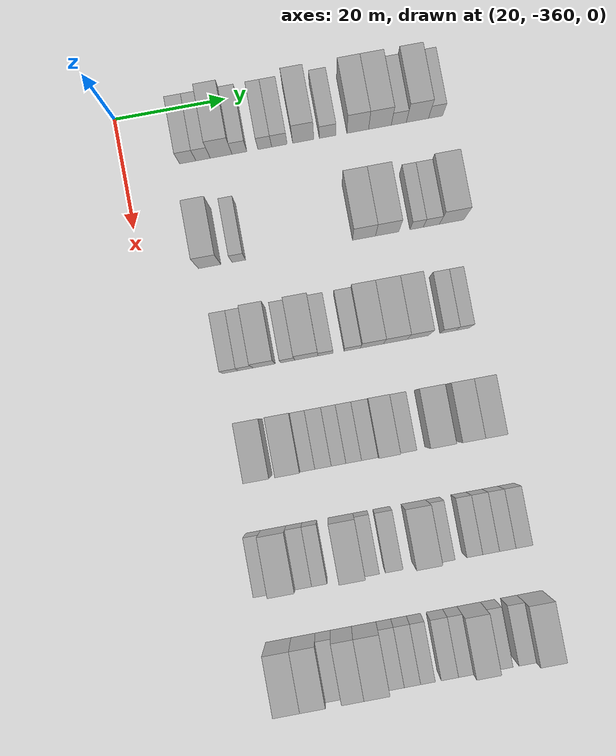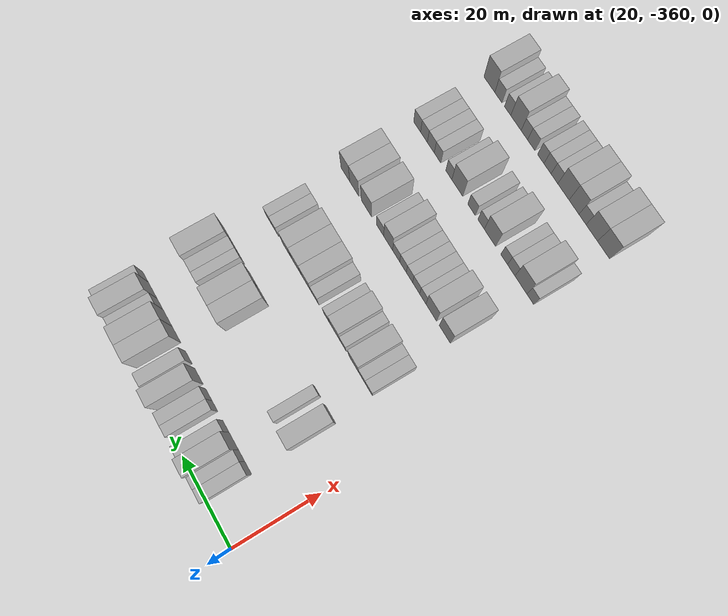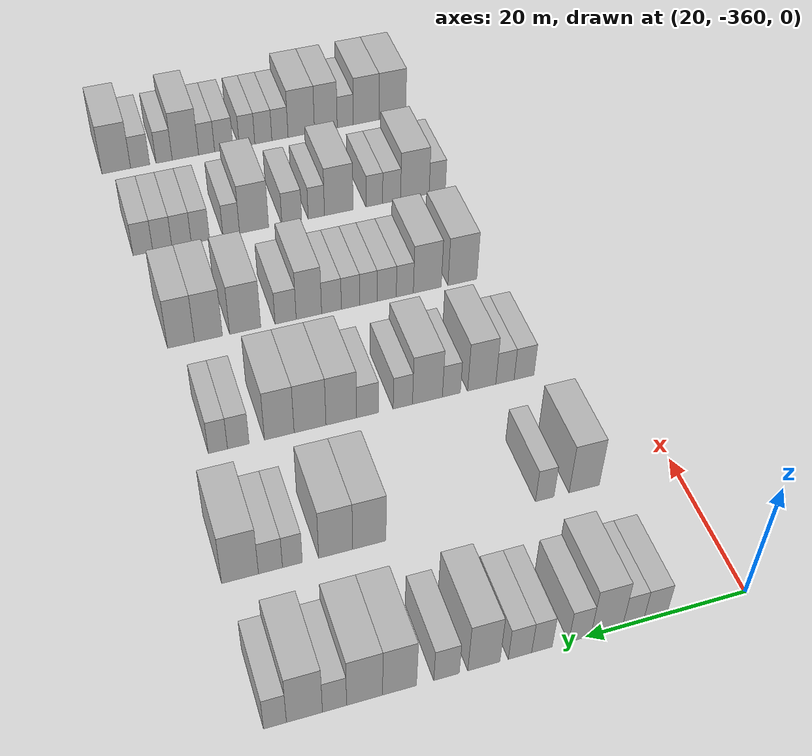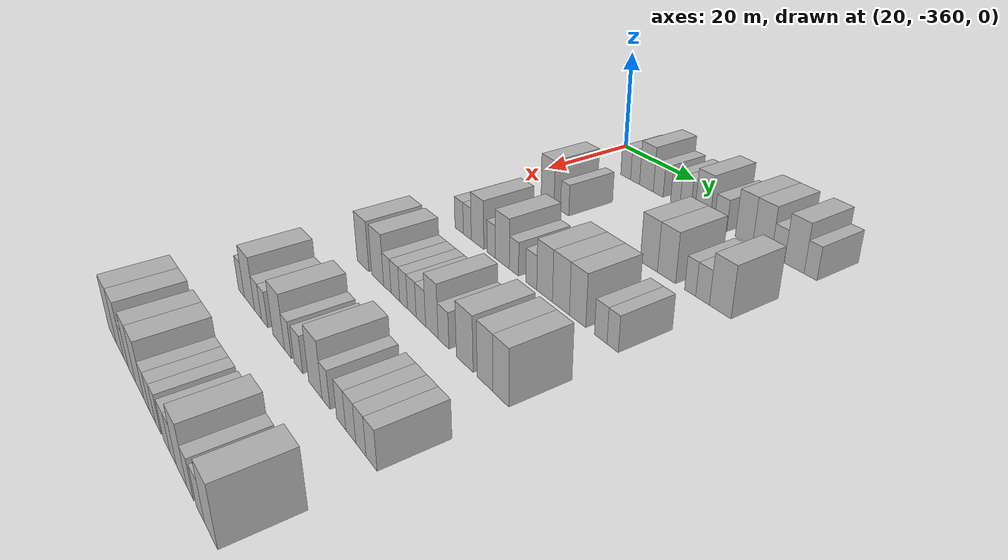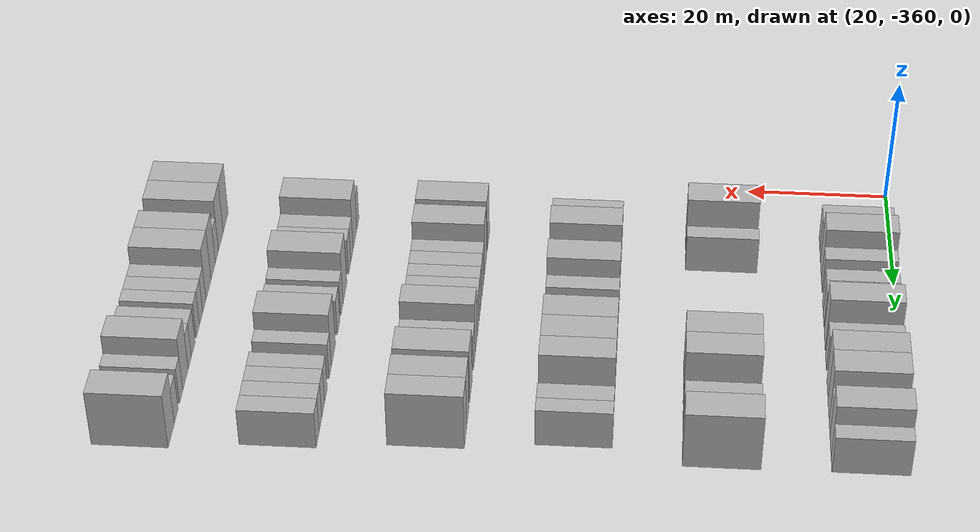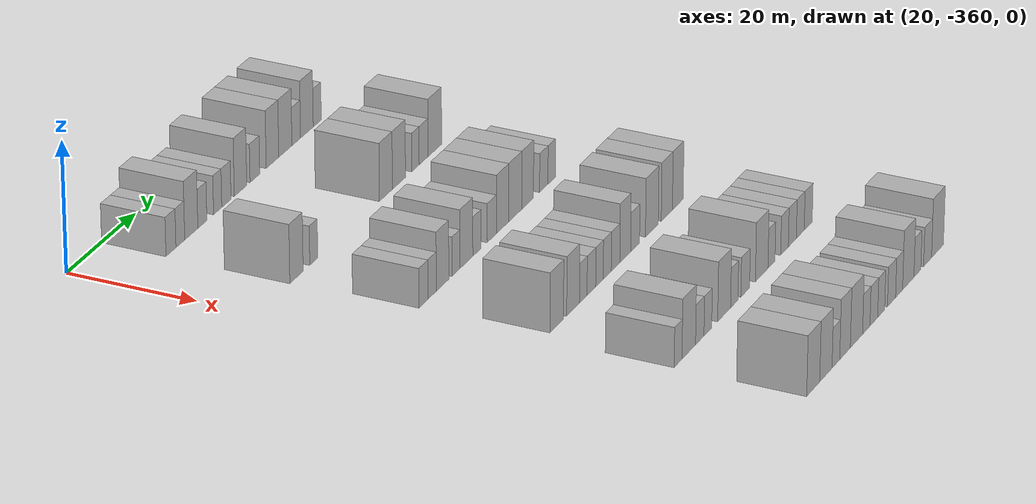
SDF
<sdf version="1.6">
 <world name="default">
  <model name="building_1">
   <static>1</static>
   <pose>25.0000 -348.5407 0 0.000000 0.000000 0.000000</pose>
   <link name="link">
    <pose>0 0 3.00 0 0 0</pose>
    <collision name="collision"><geometry><box><size>10.0000 2.9186 6.0000</size></box></geometry></collision>
    <visual name="visual">
     <cast_shadows>0</cast_shadows>
     <geometry><box><size>10.0000 2.9186 6.0000</size></box></geometry>
     <material>
      <script>
       <uri>model://HANNAS_wall/materials/scripts</uri>
       <uri>model://HANNAS_wall/materials/textures</uri>
       <name>vrc/HANNAS_wall</name>
      </script>
     </material>
    </visual>
   </link>
  </model>
  <model name="building_2">
   <static>1</static>
   <pose>25.0000 -345.7877 0 0.000000 0.000000 0.000000</pose>
   <link name="link">
    <pose>0 0 3.00 0 0 0</pose>
    <collision name="collision"><geometry><box><size>10.0000 2.5873 6.0000</size></box></geometry></collision>
    <visual name="visual">
     <cast_shadows>0</cast_shadows>
     <geometry><box><size>10.0000 2.5873 6.0000</size></box></geometry>
     <material>
      <script>
       <uri>model://HANNAS_wall/materials/scripts</uri>
       <uri>model://HANNAS_wall/materials/textures</uri>
       <name>vrc/HANNAS_wall</name>
      </script>
     </material>
    </visual>
   </link>
  </model>
  <model name="building_3">
   <static>1</static>
   <pose>25.0000 -342.5471 0 0.000000 0.000000 0.000000</pose>
   <link name="link">
    <pose>0 0 4.50 0 0 0</pose>
    <collision name="collision"><geometry><box><size>10.0000 3.8939 9.0000</size></box></geometry></collision>
    <visual name="visual">
     <cast_shadows>0</cast_shadows>
     <geometry><box><size>10.0000 3.8939 9.0000</size></box></geometry>
     <material>
      <script>
       <uri>model://HANNAS_wall/materials/scripts</uri>
       <uri>model://HANNAS_wall/materials/textures</uri>
       <name>vrc/HANNAS_wall</name>
      </script>
     </material>
    </visual>
   </link>
  </model>
  <model name="building_4">
   <static>1</static>
   <pose>25.0000 -339.2583 0 0.000000 0.000000 0.000000</pose>
   <link name="link">
    <pose>0 0 3.00 0 0 0</pose>
    <collision name="collision"><geometry><box><size>10.0000 2.6837 6.0000</size></box></geometry></collision>
    <visual name="visual">
     <cast_shadows>0</cast_shadows>
     <geometry><box><size>10.0000 2.6837 6.0000</size></box></geometry>
     <material>
      <script>
       <uri>model://HANNAS_wall/materials/scripts</uri>
       <uri>model://HANNAS_wall/materials/textures</uri>
       <name>vrc/HANNAS_wall</name>
      </script>
     </material>
    </visual>
   </link>
  </model>
  <model name="building_5">
   <static>1</static>
   <pose>25.0000 -334.6837 0 0.000000 0.000000 0.000000</pose>
   <link name="link">
    <pose>0 0 3.00 0 0 0</pose>
    <collision name="collision"><geometry><box><size>10.0000 2.4655 6.0000</size></box></geometry></collision>
    <visual name="visual">
     <cast_shadows>0</cast_shadows>
     <geometry><box><size>10.0000 2.4655 6.0000</size></box></geometry>
     <material>
      <script>
       <uri>model://HANNAS_wall/materials/scripts</uri>
       <uri>model://HANNAS_wall/materials/textures</uri>
       <name>vrc/HANNAS_wall</name>
      </script>
     </material>
    </visual>
   </link>
  </model>
  <model name="building_6">
   <static>1</static>
   <pose>25.0000 -332.0545 0 0.000000 0.000000 0.000000</pose>
   <link name="link">
    <pose>0 0 3.00 0 0 0</pose>
    <collision name="collision"><geometry><box><size>10.0000 2.7928 6.0000</size></box></geometry></collision>
    <visual name="visual">
     <cast_shadows>0</cast_shadows>
     <geometry><box><size>10.0000 2.7928 6.0000</size></box></geometry>
     <material>
      <script>
       <uri>model://HANNAS_wall/materials/scripts</uri>
       <uri>model://HANNAS_wall/materials/textures</uri>
       <name>vrc/HANNAS_wall</name>
      </script>
     </material>
    </visual>
   </link>
  </model>
  <model name="building_7">
   <static>1</static>
   <pose>25.0000 -327.7626 0 0.000000 0.000000 0.000000</pose>
   <link name="link">
    <pose>0 0 4.50 0 0 0</pose>
    <collision name="collision"><geometry><box><size>10.0000 3.7911 9.0000</size></box></geometry></collision>
    <visual name="visual">
     <cast_shadows>0</cast_shadows>
     <geometry><box><size>10.0000 3.7911 9.0000</size></box></geometry>
     <material>
      <script>
       <uri>model://HANNAS_wall/materials/scripts</uri>
       <uri>model://HANNAS_wall/materials/textures</uri>
       <name>vrc/HANNAS_wall</name>
      </script>
     </material>
    </visual>
   </link>
  </model>
  <model name="building_8">
   <static>1</static>
   <pose>25.0000 -323.3804 0 0.000000 0.000000 0.000000</pose>
   <link name="link">
    <pose>0 0 3.00 0 0 0</pose>
    <collision name="collision"><geometry><box><size>10.0000 2.9733 6.0000</size></box></geometry></collision>
    <visual name="visual">
     <cast_shadows>0</cast_shadows>
     <geometry><box><size>10.0000 2.9733 6.0000</size></box></geometry>
     <material>
      <script>
       <uri>model://HANNAS_wall/materials/scripts</uri>
       <uri>model://HANNAS_wall/materials/textures</uri>
       <name>vrc/HANNAS_wall</name>
      </script>
     </material>
    </visual>
   </link>
  </model>
  <model name="building_9">
   <static>1</static>
   <pose>25.0000 -317.9427 0 0.000000 0.000000 0.000000</pose>
   <link name="link">
    <pose>0 0 4.50 0 0 0</pose>
    <collision name="collision"><geometry><box><size>10.0000 3.9019 9.0000</size></box></geometry></collision>
    <visual name="visual">
     <cast_shadows>0</cast_shadows>
     <geometry><box><size>10.0000 3.9019 9.0000</size></box></geometry>
     <material>
      <script>
       <uri>model://HANNAS_wall/materials/scripts</uri>
       <uri>model://HANNAS_wall/materials/textures</uri>
       <name>vrc/HANNAS_wall</name>
      </script>
     </material>
    </visual>
   </link>
  </model>
  <model name="building_10">
   <static>1</static>
   <pose>25.0000 -313.9475 0 0.000000 0.000000 0.000000</pose>
   <link name="link">
    <pose>0 0 4.50 0 0 0</pose>
    <collision name="collision"><geometry><box><size>10.0000 4.0885 9.0000</size></box></geometry></collision>
    <visual name="visual">
     <cast_shadows>0</cast_shadows>
     <geometry><box><size>10.0000 4.0885 9.0000</size></box></geometry>
     <material>
      <script>
       <uri>model://HANNAS_wall/materials/scripts</uri>
       <uri>model://HANNAS_wall/materials/textures</uri>
       <name>vrc/HANNAS_wall</name>
      </script>
     </material>
    </visual>
   </link>
  </model>
  <model name="building_11">
   <static>1</static>
   <pose>25.0000 -310.5453 0 0.000000 0.000000 0.000000</pose>
   <link name="link">
    <pose>0 0 3.00 0 0 0</pose>
    <collision name="collision"><geometry><box><size>10.0000 2.7159 6.0000</size></box></geometry></collision>
    <visual name="visual">
     <cast_shadows>0</cast_shadows>
     <geometry><box><size>10.0000 2.7159 6.0000</size></box></geometry>
     <material>
      <script>
       <uri>model://HANNAS_wall/materials/scripts</uri>
       <uri>model://HANNAS_wall/materials/textures</uri>
       <name>vrc/HANNAS_wall</name>
      </script>
     </material>
    </visual>
   </link>
  </model>
  <model name="building_12">
   <static>1</static>
   <pose>25.0000 -307.1772 0 0.000000 0.000000 0.000000</pose>
   <link name="link">
    <pose>0 0 4.50 0 0 0</pose>
    <collision name="collision"><geometry><box><size>10.0000 4.0203 9.0000</size></box></geometry></collision>
    <visual name="visual">
     <cast_shadows>0</cast_shadows>
     <geometry><box><size>10.0000 4.0203 9.0000</size></box></geometry>
     <material>
      <script>
       <uri>model://HANNAS_wall/materials/scripts</uri>
       <uri>model://HANNAS_wall/materials/textures</uri>
       <name>vrc/HANNAS_wall</name>
      </script>
     </material>
    </visual>
   </link>
  </model>
  <model name="building_13">
   <static>1</static>
   <pose>25.0000 -303.8937 0 0.000000 0.000000 0.000000</pose>
   <link name="link">
    <pose>0 0 3.00 0 0 0</pose>
    <collision name="collision"><geometry><box><size>10.0000 2.5469 6.0000</size></box></geometry></collision>
    <visual name="visual">
     <cast_shadows>0</cast_shadows>
     <geometry><box><size>10.0000 2.5469 6.0000</size></box></geometry>
     <material>
      <script>
       <uri>model://HANNAS_wall/materials/scripts</uri>
       <uri>model://HANNAS_wall/materials/textures</uri>
       <name>vrc/HANNAS_wall</name>
      </script>
     </material>
    </visual>
   </link>
  </model>
  <model name="building_177">
   <static>1</static>
   <pose>44.0000 -347.9943 0 0.000000 0.000000 0.000000</pose>
   <link name="link">
    <pose>0 0 4.50 0 0 0</pose>
    <collision name="collision"><geometry><box><size>10.0000 4.0114 9.0000</size></box></geometry></collision>
    <visual name="visual">
     <cast_shadows>0</cast_shadows>
     <geometry><box><size>10.0000 4.0114 9.0000</size></box></geometry>
     <material>
      <script>
       <uri>model://HANNAS_wall/materials/scripts</uri>
       <uri>model://HANNAS_wall/materials/textures</uri>
       <name>vrc/HANNAS_wall</name>
      </script>
     </material>
    </visual>
   </link>
  </model>
  <model name="building_178">
   <static>1</static>
   <pose>44.0000 -342.7737 0 0.000000 0.000000 0.000000</pose>
   <link name="link">
    <pose>0 0 3.00 0 0 0</pose>
    <collision name="collision"><geometry><box><size>10.0000 2.4297 6.0000</size></box></geometry></collision>
    <visual name="visual">
     <cast_shadows>0</cast_shadows>
     <geometry><box><size>10.0000 2.4297 6.0000</size></box></geometry>
     <material>
      <script>
       <uri>model://HANNAS_wall/materials/scripts</uri>
       <uri>model://HANNAS_wall/materials/textures</uri>
       <name>vrc/HANNAS_wall</name>
      </script>
     </material>
    </visual>
   </link>
  </model>
  <model name="building_179">
   <static>1</static>
   <pose>44.0000 -320.3758 0 0.000000 0.000000 0.000000</pose>
   <link name="link">
    <pose>0 0 4.50 0 0 0</pose>
    <collision name="collision"><geometry><box><size>10.0000 4.1220 9.0000</size></box></geometry></collision>
    <visual name="visual">
     <cast_shadows>0</cast_shadows>
     <geometry><box><size>10.0000 4.1220 9.0000</size></box></geometry>
     <material>
      <script>
       <uri>model://HANNAS_wall/materials/scripts</uri>
       <uri>model://HANNAS_wall/materials/textures</uri>
       <name>vrc/HANNAS_wall</name>
      </script>
     </material>
    </visual>
   </link>
  </model>
  <model name="building_180">
   <static>1</static>
   <pose>44.0000 -316.2296 0 0.000000 0.000000 0.000000</pose>
   <link name="link">
    <pose>0 0 4.50 0 0 0</pose>
    <collision name="collision"><geometry><box><size>10.0000 4.1704 9.0000</size></box></geometry></collision>
    <visual name="visual">
     <cast_shadows>0</cast_shadows>
     <geometry><box><size>10.0000 4.1704 9.0000</size></box></geometry>
     <material>
      <script>
       <uri>model://HANNAS_wall/materials/scripts</uri>
       <uri>model://HANNAS_wall/materials/textures</uri>
       <name>vrc/HANNAS_wall</name>
      </script>
     </material>
    </visual>
   </link>
  </model>
  <model name="building_181">
   <static>1</static>
   <pose>44.0000 -310.9417 0 0.000000 0.000000 0.000000</pose>
   <link name="link">
    <pose>0 0 3.00 0 0 0</pose>
    <collision name="collision"><geometry><box><size>10.0000 2.4054 6.0000</size></box></geometry></collision>
    <visual name="visual">
     <cast_shadows>0</cast_shadows>
     <geometry><box><size>10.0000 2.4054 6.0000</size></box></geometry>
     <material>
      <script>
       <uri>model://HANNAS_wall/materials/scripts</uri>
       <uri>model://HANNAS_wall/materials/textures</uri>
       <name>vrc/HANNAS_wall</name>
      </script>
     </material>
    </visual>
   </link>
  </model>
  <model name="building_182">
   <static>1</static>
   <pose>44.0000 -308.2919 0 0.000000 0.000000 0.000000</pose>
   <link name="link">
    <pose>0 0 3.00 0 0 0</pose>
    <collision name="collision"><geometry><box><size>10.0000 2.8944 6.0000</size></box></geometry></collision>
    <visual name="visual">
     <cast_shadows>0</cast_shadows>
     <geometry><box><size>10.0000 2.8944 6.0000</size></box></geometry>
     <material>
      <script>
       <uri>model://HANNAS_wall/materials/scripts</uri>
       <uri>model://HANNAS_wall/materials/textures</uri>
       <name>vrc/HANNAS_wall</name>
      </script>
     </material>
    </visual>
   </link>
  </model>
  <model name="building_183">
   <static>1</static>
   <pose>44.0000 -304.6418 0 0.000000 0.000000 0.000000</pose>
   <link name="link">
    <pose>0 0 4.50 0 0 0</pose>
    <collision name="collision"><geometry><box><size>10.0000 4.4057 9.0000</size></box></geometry></collision>
    <visual name="visual">
     <cast_shadows>0</cast_shadows>
     <geometry><box><size>10.0000 4.4057 9.0000</size></box></geometry>
     <material>
      <script>
       <uri>model://HANNAS_wall/materials/scripts</uri>
       <uri>model://HANNAS_wall/materials/textures</uri>
       <name>vrc/HANNAS_wall</name>
      </script>
     </material>
    </visual>
   </link>
  </model>
  <model name="building_357">
   <static>1</static>
   <pose>63.0000 -347.6005 0 0.000000 0.000000 0.000000</pose>
   <link name="link">
    <pose>0 0 3.00 0 0 0</pose>
    <collision name="collision"><geometry><box><size>10.0000 2.7990 6.0000</size></box></geometry></collision>
    <visual name="visual">
     <cast_shadows>0</cast_shadows>
     <geometry><box><size>10.0000 2.7990 6.0000</size></box></geometry>
     <material>
      <script>
       <uri>model://HANNAS_wall/materials/scripts</uri>
       <uri>model://HANNAS_wall/materials/textures</uri>
       <name>vrc/HANNAS_wall</name>
      </script>
     </material>
    </visual>
   </link>
  </model>
  <model name="building_358">
   <static>1</static>
   <pose>63.0000 -344.9167 0 0.000000 0.000000 0.000000</pose>
   <link name="link">
    <pose>0 0 3.00 0 0 0</pose>
    <collision name="collision"><geometry><box><size>10.0000 2.5685 6.0000</size></box></geometry></collision>
    <visual name="visual">
     <cast_shadows>0</cast_shadows>
     <geometry><box><size>10.0000 2.5685 6.0000</size></box></geometry>
     <material>
      <script>
       <uri>model://HANNAS_wall/materials/scripts</uri>
       <uri>model://HANNAS_wall/materials/textures</uri>
       <name>vrc/HANNAS_wall</name>
      </script>
     </material>
    </visual>
   </link>
  </model>
  <model name="building_359">
   <static>1</static>
   <pose>63.0000 -341.6679 0 0.000000 0.000000 0.000000</pose>
   <link name="link">
    <pose>0 0 4.50 0 0 0</pose>
    <collision name="collision"><geometry><box><size>10.0000 3.9293 9.0000</size></box></geometry></collision>
    <visual name="visual">
     <cast_shadows>0</cast_shadows>
     <geometry><box><size>10.0000 3.9293 9.0000</size></box></geometry>
     <material>
      <script>
       <uri>model://HANNAS_wall/materials/scripts</uri>
       <uri>model://HANNAS_wall/materials/textures</uri>
       <name>vrc/HANNAS_wall</name>
      </script>
     </material>
    </visual>
   </link>
  </model>
  <model name="building_360">
   <static>1</static>
   <pose>63.0000 -337.4609 0 0.000000 0.000000 0.000000</pose>
   <link name="link">
    <pose>0 0 3.00 0 0 0</pose>
    <collision name="collision"><geometry><box><size>10.0000 2.4846 6.0000</size></box></geometry></collision>
    <visual name="visual">
     <cast_shadows>0</cast_shadows>
     <geometry><box><size>10.0000 2.4846 6.0000</size></box></geometry>
     <material>
      <script>
       <uri>model://HANNAS_wall/materials/scripts</uri>
       <uri>model://HANNAS_wall/materials/textures</uri>
       <name>vrc/HANNAS_wall</name>
      </script>
     </material>
    </visual>
   </link>
  </model>
  <model name="building_361">
   <static>1</static>
   <pose>63.0000 -334.1674 0 0.000000 0.000000 0.000000</pose>
   <link name="link">
    <pose>0 0 4.50 0 0 0</pose>
    <collision name="collision"><geometry><box><size>10.0000 4.1025 9.0000</size></box></geometry></collision>
    <visual name="visual">
     <cast_shadows>0</cast_shadows>
     <geometry><box><size>10.0000 4.1025 9.0000</size></box></geometry>
     <material>
      <script>
       <uri>model://HANNAS_wall/materials/scripts</uri>
       <uri>model://HANNAS_wall/materials/textures</uri>
       <name>vrc/HANNAS_wall</name>
      </script>
     </material>
    </visual>
   </link>
  </model>
  <model name="building_362">
   <static>1</static>
   <pose>63.0000 -330.8051 0 0.000000 0.000000 0.000000</pose>
   <link name="link">
    <pose>0 0 3.00 0 0 0</pose>
    <collision name="collision"><geometry><box><size>10.0000 2.6221 6.0000</size></box></geometry></collision>
    <visual name="visual">
     <cast_shadows>0</cast_shadows>
     <geometry><box><size>10.0000 2.6221 6.0000</size></box></geometry>
     <material>
      <script>
       <uri>model://HANNAS_wall/materials/scripts</uri>
       <uri>model://HANNAS_wall/materials/textures</uri>
       <name>vrc/HANNAS_wall</name>
      </script>
     </material>
    </visual>
   </link>
  </model>
  <model name="building_363">
   <static>1</static>
   <pose>63.0000 -326.0228 0 0.000000 0.000000 0.000000</pose>
   <link name="link">
    <pose>0 0 3.00 0 0 0</pose>
    <collision name="collision"><geometry><box><size>10.0000 2.9424 6.0000</size></box></geometry></collision>
    <visual name="visual">
     <cast_shadows>0</cast_shadows>
     <geometry><box><size>10.0000 2.9424 6.0000</size></box></geometry>
     <material>
      <script>
       <uri>model://HANNAS_wall/materials/scripts</uri>
       <uri>model://HANNAS_wall/materials/textures</uri>
       <name>vrc/HANNAS_wall</name>
      </script>
     </material>
    </visual>
   </link>
  </model>
  <model name="building_364">
   <static>1</static>
   <pose>63.0000 -322.5183 0 0.000000 0.000000 0.000000</pose>
   <link name="link">
    <pose>0 0 4.50 0 0 0</pose>
    <collision name="collision"><geometry><box><size>10.0000 4.0666 9.0000</size></box></geometry></collision>
    <visual name="visual">
     <cast_shadows>0</cast_shadows>
     <geometry><box><size>10.0000 4.0666 9.0000</size></box></geometry>
     <material>
      <script>
       <uri>model://HANNAS_wall/materials/scripts</uri>
       <uri>model://HANNAS_wall/materials/textures</uri>
       <name>vrc/HANNAS_wall</name>
      </script>
     </material>
    </visual>
   </link>
  </model>
  <model name="building_365">
   <static>1</static>
   <pose>63.0000 -318.3806 0 0.000000 0.000000 0.000000</pose>
   <link name="link">
    <pose>0 0 4.50 0 0 0</pose>
    <collision name="collision"><geometry><box><size>10.0000 4.2089 9.0000</size></box></geometry></collision>
    <visual name="visual">
     <cast_shadows>0</cast_shadows>
     <geometry><box><size>10.0000 4.2089 9.0000</size></box></geometry>
     <material>
      <script>
       <uri>model://HANNAS_wall/materials/scripts</uri>
       <uri>model://HANNAS_wall/materials/textures</uri>
       <name>vrc/HANNAS_wall</name>
      </script>
     </material>
    </visual>
   </link>
  </model>
  <model name="building_366">
   <static>1</static>
   <pose>63.0000 -314.3354 0 0.000000 0.000000 0.000000</pose>
   <link name="link">
    <pose>0 0 4.50 0 0 0</pose>
    <collision name="collision"><geometry><box><size>10.0000 3.8813 9.0000</size></box></geometry></collision>
    <visual name="visual">
     <cast_shadows>0</cast_shadows>
     <geometry><box><size>10.0000 3.8813 9.0000</size></box></geometry>
     <material>
      <script>
       <uri>model://HANNAS_wall/materials/scripts</uri>
       <uri>model://HANNAS_wall/materials/textures</uri>
       <name>vrc/HANNAS_wall</name>
      </script>
     </material>
    </visual>
   </link>
  </model>
  <model name="building_367">
   <static>1</static>
   <pose>63.0000 -308.9982 0 0.000000 0.000000 0.000000</pose>
   <link name="link">
    <pose>0 0 3.00 0 0 0</pose>
    <collision name="collision"><geometry><box><size>10.0000 2.7933 6.0000</size></box></geometry></collision>
    <visual name="visual">
     <cast_shadows>0</cast_shadows>
     <geometry><box><size>10.0000 2.7933 6.0000</size></box></geometry>
     <material>
      <script>
       <uri>model://HANNAS_wall/materials/scripts</uri>
       <uri>model://HANNAS_wall/materials/textures</uri>
       <name>vrc/HANNAS_wall</name>
      </script>
     </material>
    </visual>
   </link>
  </model>
  <model name="building_368">
   <static>1</static>
   <pose>63.0000 -306.3695 0 0.000000 0.000000 0.000000</pose>
   <link name="link">
    <pose>0 0 3.00 0 0 0</pose>
    <collision name="collision"><geometry><box><size>10.0000 2.4640 6.0000</size></box></geometry></collision>
    <visual name="visual">
     <cast_shadows>0</cast_shadows>
     <geometry><box><size>10.0000 2.4640 6.0000</size></box></geometry>
     <material>
      <script>
       <uri>model://HANNAS_wall/materials/scripts</uri>
       <uri>model://HANNAS_wall/materials/textures</uri>
       <name>vrc/HANNAS_wall</name>
      </script>
     </material>
    </visual>
   </link>
  </model>
  <model name="building_533">
   <static>1</static>
   <pose>82.0000 -345.8524 0 0.000000 0.000000 0.000000</pose>
   <link name="link">
    <pose>0 0 4.50 0 0 0</pose>
    <collision name="collision"><geometry><box><size>10.0000 4.2953 9.0000</size></box></geometry></collision>
    <visual name="visual">
     <cast_shadows>0</cast_shadows>
     <geometry><box><size>10.0000 4.2953 9.0000</size></box></geometry>
     <material>
      <script>
       <uri>model://HANNAS_wall/materials/scripts</uri>
       <uri>model://HANNAS_wall/materials/textures</uri>
       <name>vrc/HANNAS_wall</name>
      </script>
     </material>
    </visual>
   </link>
  </model>
  <model name="building_534">
   <static>1</static>
   <pose>82.0000 -340.6489 0 0.000000 0.000000 0.000000</pose>
   <link name="link">
    <pose>0 0 4.50 0 0 0</pose>
    <collision name="collision"><geometry><box><size>10.0000 4.1117 9.0000</size></box></geometry></collision>
    <visual name="visual">
     <cast_shadows>0</cast_shadows>
     <geometry><box><size>10.0000 4.1117 9.0000</size></box></geometry>
     <material>
      <script>
       <uri>model://HANNAS_wall/materials/scripts</uri>
       <uri>model://HANNAS_wall/materials/textures</uri>
       <name>vrc/HANNAS_wall</name>
      </script>
     </material>
    </visual>
   </link>
  </model>
  <model name="building_535">
   <static>1</static>
   <pose>82.0000 -337.3420 0 0.000000 0.000000 0.000000</pose>
   <link name="link">
    <pose>0 0 3.00 0 0 0</pose>
    <collision name="collision"><geometry><box><size>10.0000 2.5020 6.0000</size></box></geometry></collision>
    <visual name="visual">
     <cast_shadows>0</cast_shadows>
     <geometry><box><size>10.0000 2.5020 6.0000</size></box></geometry>
     <material>
      <script>
       <uri>model://HANNAS_wall/materials/scripts</uri>
       <uri>model://HANNAS_wall/materials/textures</uri>
       <name>vrc/HANNAS_wall</name>
      </script>
     </material>
    </visual>
   </link>
  </model>
  <model name="building_536">
   <static>1</static>
   <pose>82.0000 -334.6913 0 0.000000 0.000000 0.000000</pose>
   <link name="link">
    <pose>0 0 3.00 0 0 0</pose>
    <collision name="collision"><geometry><box><size>10.0000 2.7995 6.0000</size></box></geometry></collision>
    <visual name="visual">
     <cast_shadows>0</cast_shadows>
     <geometry><box><size>10.0000 2.7995 6.0000</size></box></geometry>
     <material>
      <script>
       <uri>model://HANNAS_wall/materials/scripts</uri>
       <uri>model://HANNAS_wall/materials/textures</uri>
       <name>vrc/HANNAS_wall</name>
      </script>
     </material>
    </visual>
   </link>
  </model>
  <model name="building_537">
   <static>1</static>
   <pose>82.0000 -332.0444 0 0.000000 0.000000 0.000000</pose>
   <link name="link">
    <pose>0 0 3.00 0 0 0</pose>
    <collision name="collision"><geometry><box><size>10.0000 2.4944 6.0000</size></box></geometry></collision>
    <visual name="visual">
     <cast_shadows>0</cast_shadows>
     <geometry><box><size>10.0000 2.4944 6.0000</size></box></geometry>
     <material>
      <script>
       <uri>model://HANNAS_wall/materials/scripts</uri>
       <uri>model://HANNAS_wall/materials/textures</uri>
       <name>vrc/HANNAS_wall</name>
      </script>
     </material>
    </visual>
   </link>
  </model>
  <model name="building_538">
   <static>1</static>
   <pose>82.0000 -329.4666 0 0.000000 0.000000 0.000000</pose>
   <link name="link">
    <pose>0 0 3.00 0 0 0</pose>
    <collision name="collision"><geometry><box><size>10.0000 2.6612 6.0000</size></box></geometry></collision>
    <visual name="visual">
     <cast_shadows>0</cast_shadows>
     <geometry><box><size>10.0000 2.6612 6.0000</size></box></geometry>
     <material>
      <script>
       <uri>model://HANNAS_wall/materials/scripts</uri>
       <uri>model://HANNAS_wall/materials/textures</uri>
       <name>vrc/HANNAS_wall</name>
      </script>
     </material>
    </visual>
   </link>
  </model>
  <model name="building_539">
   <static>1</static>
   <pose>82.0000 -326.7232 0 0.000000 0.000000 0.000000</pose>
   <link name="link">
    <pose>0 0 3.00 0 0 0</pose>
    <collision name="collision"><geometry><box><size>10.0000 2.8256 6.0000</size></box></geometry></collision>
    <visual name="visual">
     <cast_shadows>0</cast_shadows>
     <geometry><box><size>10.0000 2.8256 6.0000</size></box></geometry>
     <material>
      <script>
       <uri>model://HANNAS_wall/materials/scripts</uri>
       <uri>model://HANNAS_wall/materials/textures</uri>
       <name>vrc/HANNAS_wall</name>
      </script>
     </material>
    </visual>
   </link>
  </model>
  <model name="building_540">
   <static>1</static>
   <pose>82.0000 -323.5049 0 0.000000 0.000000 0.000000</pose>
   <link name="link">
    <pose>0 0 4.50 0 0 0</pose>
    <collision name="collision"><geometry><box><size>10.0000 3.6111 9.0000</size></box></geometry></collision>
    <visual name="visual">
     <cast_shadows>0</cast_shadows>
     <geometry><box><size>10.0000 3.6111 9.0000</size></box></geometry>
     <material>
      <script>
       <uri>model://HANNAS_wall/materials/scripts</uri>
       <uri>model://HANNAS_wall/materials/textures</uri>
       <name>vrc/HANNAS_wall</name>
      </script>
     </material>
    </visual>
   </link>
  </model>
  <model name="building_541">
   <static>1</static>
   <pose>82.0000 -320.2064 0 0.000000 0.000000 0.000000</pose>
   <link name="link">
    <pose>0 0 3.00 0 0 0</pose>
    <collision name="collision"><geometry><box><size>10.0000 2.9858 6.0000</size></box></geometry></collision>
    <visual name="visual">
     <cast_shadows>0</cast_shadows>
     <geometry><box><size>10.0000 2.9858 6.0000</size></box></geometry>
     <material>
      <script>
       <uri>model://HANNAS_wall/materials/scripts</uri>
       <uri>model://HANNAS_wall/materials/textures</uri>
       <name>vrc/HANNAS_wall</name>
      </script>
     </material>
    </visual>
   </link>
  </model>
  <model name="building_542">
   <static>1</static>
   <pose>82.0000 -314.5389 0 0.000000 0.000000 0.000000</pose>
   <link name="link">
    <pose>0 0 4.50 0 0 0</pose>
    <collision name="collision"><geometry><box><size>10.0000 4.3493 9.0000</size></box></geometry></collision>
    <visual name="visual">
     <cast_shadows>0</cast_shadows>
     <geometry><box><size>10.0000 4.3493 9.0000</size></box></geometry>
     <material>
      <script>
       <uri>model://HANNAS_wall/materials/scripts</uri>
       <uri>model://HANNAS_wall/materials/textures</uri>
       <name>vrc/HANNAS_wall</name>
      </script>
     </material>
    </visual>
   </link>
  </model>
  <model name="building_543">
   <static>1</static>
   <pose>82.0000 -309.4413 0 0.000000 0.000000 0.000000</pose>
   <link name="link">
    <pose>0 0 4.50 0 0 0</pose>
    <collision name="collision"><geometry><box><size>10.0000 3.8459 9.0000</size></box></geometry></collision>
    <visual name="visual">
     <cast_shadows>0</cast_shadows>
     <geometry><box><size>10.0000 3.8459 9.0000</size></box></geometry>
     <material>
      <script>
       <uri>model://HANNAS_wall/materials/scripts</uri>
       <uri>model://HANNAS_wall/materials/textures</uri>
       <name>vrc/HANNAS_wall</name>
      </script>
     </material>
    </visual>
   </link>
  </model>
  <model name="building_544">
   <static>1</static>
   <pose>82.0000 -305.6664 0 0.000000 0.000000 0.000000</pose>
   <link name="link">
    <pose>0 0 4.50 0 0 0</pose>
    <collision name="collision"><geometry><box><size>10.0000 3.7041 9.0000</size></box></geometry></collision>
    <visual name="visual">
     <cast_shadows>0</cast_shadows>
     <geometry><box><size>10.0000 3.7041 9.0000</size></box></geometry>
     <material>
      <script>
       <uri>model://HANNAS_wall/materials/scripts</uri>
       <uri>model://HANNAS_wall/materials/textures</uri>
       <name>vrc/HANNAS_wall</name>
      </script>
     </material>
    </visual>
   </link>
  </model>
  <model name="building_704">
   <static>1</static>
   <pose>101.0000 -348.7161 0 0.000000 0.000000 0.000000</pose>
   <link name="link">
    <pose>0 0 3.00 0 0 0</pose>
    <collision name="collision"><geometry><box><size>10.0000 2.5679 6.0000</size></box></geometry></collision>
    <visual name="visual">
     <cast_shadows>0</cast_shadows>
     <geometry><box><size>10.0000 2.5679 6.0000</size></box></geometry>
     <material>
      <script>
       <uri>model://HANNAS_wall/materials/scripts</uri>
       <uri>model://HANNAS_wall/materials/textures</uri>
       <name>vrc/HANNAS_wall</name>
      </script>
     </material>
    </visual>
   </link>
  </model>
  <model name="building_705">
   <static>1</static>
   <pose>101.0000 -345.1854 0 0.000000 0.000000 0.000000</pose>
   <link name="link">
    <pose>0 0 4.50 0 0 0</pose>
    <collision name="collision"><geometry><box><size>10.0000 4.4935 9.0000</size></box></geometry></collision>
    <visual name="visual">
     <cast_shadows>0</cast_shadows>
     <geometry><box><size>10.0000 4.4935 9.0000</size></box></geometry>
     <material>
      <script>
       <uri>model://HANNAS_wall/materials/scripts</uri>
       <uri>model://HANNAS_wall/materials/textures</uri>
       <name>vrc/HANNAS_wall</name>
      </script>
     </material>
    </visual>
   </link>
  </model>
  <model name="building_706">
   <static>1</static>
   <pose>101.0000 -341.5361 0 0.000000 0.000000 0.000000</pose>
   <link name="link">
    <pose>0 0 3.00 0 0 0</pose>
    <collision name="collision"><geometry><box><size>10.0000 2.8051 6.0000</size></box></geometry></collision>
    <visual name="visual">
     <cast_shadows>0</cast_shadows>
     <geometry><box><size>10.0000 2.8051 6.0000</size></box></geometry>
     <material>
      <script>
       <uri>model://HANNAS_wall/materials/scripts</uri>
       <uri>model://HANNAS_wall/materials/textures</uri>
       <name>vrc/HANNAS_wall</name>
      </script>
     </material>
    </visual>
   </link>
  </model>
  <model name="building_707">
   <static>1</static>
   <pose>101.0000 -338.8391 0 0.000000 0.000000 0.000000</pose>
   <link name="link">
    <pose>0 0 3.00 0 0 0</pose>
    <collision name="collision"><geometry><box><size>10.0000 2.5889 6.0000</size></box></geometry></collision>
    <visual name="visual">
     <cast_shadows>0</cast_shadows>
     <geometry><box><size>10.0000 2.5889 6.0000</size></box></geometry>
     <material>
      <script>
       <uri>model://HANNAS_wall/materials/scripts</uri>
       <uri>model://HANNAS_wall/materials/textures</uri>
       <name>vrc/HANNAS_wall</name>
      </script>
     </material>
    </visual>
   </link>
  </model>
  <model name="building_708">
   <static>1</static>
   <pose>101.0000 -333.3546 0 0.000000 0.000000 0.000000</pose>
   <link name="link">
    <pose>0 0 4.50 0 0 0</pose>
    <collision name="collision"><geometry><box><size>10.0000 4.3801 9.0000</size></box></geometry></collision>
    <visual name="visual">
     <cast_shadows>0</cast_shadows>
     <geometry><box><size>10.0000 4.3801 9.0000</size></box></geometry>
     <material>
      <script>
       <uri>model://HANNAS_wall/materials/scripts</uri>
       <uri>model://HANNAS_wall/materials/textures</uri>
       <name>vrc/HANNAS_wall</name>
      </script>
     </material>
    </visual>
   </link>
  </model>
  <model name="building_709">
   <static>1</static>
   <pose>101.0000 -329.9191 0 0.000000 0.000000 0.000000</pose>
   <link name="link">
    <pose>0 0 3.00 0 0 0</pose>
    <collision name="collision"><geometry><box><size>10.0000 2.4908 6.0000</size></box></geometry></collision>
    <visual name="visual">
     <cast_shadows>0</cast_shadows>
     <geometry><box><size>10.0000 2.4908 6.0000</size></box></geometry>
     <material>
      <script>
       <uri>model://HANNAS_wall/materials/scripts</uri>
       <uri>model://HANNAS_wall/materials/textures</uri>
       <name>vrc/HANNAS_wall</name>
      </script>
     </material>
    </visual>
   </link>
  </model>
  <model name="building_710">
   <static>1</static>
   <pose>101.0000 -326.1760 0 0.000000 0.000000 0.000000</pose>
   <link name="link">
    <pose>0 0 3.00 0 0 0</pose>
    <collision name="collision"><geometry><box><size>10.0000 2.9955 6.0000</size></box></geometry></collision>
    <visual name="visual">
     <cast_shadows>0</cast_shadows>
     <geometry><box><size>10.0000 2.9955 6.0000</size></box></geometry>
     <material>
      <script>
       <uri>model://HANNAS_wall/materials/scripts</uri>
       <uri>model://HANNAS_wall/materials/textures</uri>
       <name>vrc/HANNAS_wall</name>
      </script>
     </material>
    </visual>
   </link>
  </model>
  <model name="building_711">
   <static>1</static>
   <pose>101.0000 -320.5016 0 0.000000 0.000000 0.000000</pose>
   <link name="link">
    <pose>0 0 4.50 0 0 0</pose>
    <collision name="collision"><geometry><box><size>10.0000 4.3532 9.0000</size></box></geometry></collision>
    <visual name="visual">
     <cast_shadows>0</cast_shadows>
     <geometry><box><size>10.0000 4.3532 9.0000</size></box></geometry>
     <material>
      <script>
       <uri>model://HANNAS_wall/materials/scripts</uri>
       <uri>model://HANNAS_wall/materials/textures</uri>
       <name>vrc/HANNAS_wall</name>
      </script>
     </material>
    </visual>
   </link>
  </model>
  <model name="building_712">
   <static>1</static>
   <pose>101.0000 -317.0958 0 0.000000 0.000000 0.000000</pose>
   <link name="link">
    <pose>0 0 3.00 0 0 0</pose>
    <collision name="collision"><geometry><box><size>10.0000 2.4585 6.0000</size></box></geometry></collision>
    <visual name="visual">
     <cast_shadows>0</cast_shadows>
     <geometry><box><size>10.0000 2.4585 6.0000</size></box></geometry>
     <material>
      <script>
       <uri>model://HANNAS_wall/materials/scripts</uri>
       <uri>model://HANNAS_wall/materials/textures</uri>
       <name>vrc/HANNAS_wall</name>
      </script>
     </material>
    </visual>
   </link>
  </model>
  <model name="building_713">
   <static>1</static>
   <pose>101.0000 -312.5202 0 0.000000 0.000000 0.000000</pose>
   <link name="link">
    <pose>0 0 3.00 0 0 0</pose>
    <collision name="collision"><geometry><box><size>10.0000 2.6929 6.0000</size></box></geometry></collision>
    <visual name="visual">
     <cast_shadows>0</cast_shadows>
     <geometry><box><size>10.0000 2.6929 6.0000</size></box></geometry>
     <material>
      <script>
       <uri>model://HANNAS_wall/materials/scripts</uri>
       <uri>model://HANNAS_wall/materials/textures</uri>
       <name>vrc/HANNAS_wall</name>
      </script>
     </material>
    </visual>
   </link>
  </model>
  <model name="building_714">
   <static>1</static>
   <pose>101.0000 -309.7546 0 0.000000 0.000000 0.000000</pose>
   <link name="link">
    <pose>0 0 3.00 0 0 0</pose>
    <collision name="collision"><geometry><box><size>10.0000 2.8382 6.0000</size></box></geometry></collision>
    <visual name="visual">
     <cast_shadows>0</cast_shadows>
     <geometry><box><size>10.0000 2.8382 6.0000</size></box></geometry>
     <material>
      <script>
       <uri>model://HANNAS_wall/materials/scripts</uri>
       <uri>model://HANNAS_wall/materials/textures</uri>
       <name>vrc/HANNAS_wall</name>
      </script>
     </material>
    </visual>
   </link>
  </model>
  <model name="building_715">
   <static>1</static>
   <pose>101.0000 -306.9418 0 0.000000 0.000000 0.000000</pose>
   <link name="link">
    <pose>0 0 3.00 0 0 0</pose>
    <collision name="collision"><geometry><box><size>10.0000 2.7874 6.0000</size></box></geometry></collision>
    <visual name="visual">
     <cast_shadows>0</cast_shadows>
     <geometry><box><size>10.0000 2.7874 6.0000</size></box></geometry>
     <material>
      <script>
       <uri>model://HANNAS_wall/materials/scripts</uri>
       <uri>model://HANNAS_wall/materials/textures</uri>
       <name>vrc/HANNAS_wall</name>
      </script>
     </material>
    </visual>
   </link>
  </model>
  <model name="building_716">
   <static>1</static>
   <pose>101.0000 -304.1163 0 0.000000 0.000000 0.000000</pose>
   <link name="link">
    <pose>0 0 3.00 0 0 0</pose>
    <collision name="collision"><geometry><box><size>10.0000 2.8636 6.0000</size></box></geometry></collision>
    <visual name="visual">
     <cast_shadows>0</cast_shadows>
     <geometry><box><size>10.0000 2.8636 6.0000</size></box></geometry>
     <material>
      <script>
       <uri>model://HANNAS_wall/materials/scripts</uri>
       <uri>model://HANNAS_wall/materials/textures</uri>
       <name>vrc/HANNAS_wall</name>
      </script>
     </material>
    </visual>
   </link>
  </model>
  <model name="building_886">
   <static>1</static>
   <pose>120.0000 -347.7797 0 0.000000 0.000000 0.000000</pose>
   <link name="link">
    <pose>0 0 4.50 0 0 0</pose>
    <collision name="collision"><geometry><box><size>10.0000 4.4405 9.0000</size></box></geometry></collision>
    <visual name="visual">
     <cast_shadows>0</cast_shadows>
     <geometry><box><size>10.0000 4.4405 9.0000</size></box></geometry>
     <material>
      <script>
       <uri>model://HANNAS_wall/materials/scripts</uri>
       <uri>model://HANNAS_wall/materials/textures</uri>
       <name>vrc/HANNAS_wall</name>
      </script>
     </material>
    </visual>
   </link>
  </model>
  <model name="building_887">
   <static>1</static>
   <pose>120.0000 -343.4454 0 0.000000 0.000000 0.000000</pose>
   <link name="link">
    <pose>0 0 4.50 0 0 0</pose>
    <collision name="collision"><geometry><box><size>10.0000 4.2282 9.0000</size></box></geometry></collision>
    <visual name="visual">
     <cast_shadows>0</cast_shadows>
     <geometry><box><size>10.0000 4.2282 9.0000</size></box></geometry>
     <material>
      <script>
       <uri>model://HANNAS_wall/materials/scripts</uri>
       <uri>model://HANNAS_wall/materials/textures</uri>
       <name>vrc/HANNAS_wall</name>
      </script>
     </material>
    </visual>
   </link>
  </model>
  <model name="building_888">
   <static>1</static>
   <pose>120.0000 -340.0039 0 0.000000 0.000000 0.000000</pose>
   <link name="link">
    <pose>0 0 3.00 0 0 0</pose>
    <collision name="collision"><geometry><box><size>10.0000 2.6547 6.0000</size></box></geometry></collision>
    <visual name="visual">
     <cast_shadows>0</cast_shadows>
     <geometry><box><size>10.0000 2.6547 6.0000</size></box></geometry>
     <material>
      <script>
       <uri>model://HANNAS_wall/materials/scripts</uri>
       <uri>model://HANNAS_wall/materials/textures</uri>
       <name>vrc/HANNAS_wall</name>
      </script>
     </material>
    </visual>
   </link>
  </model>
  <model name="building_889">
   <static>1</static>
   <pose>120.0000 -336.8237 0 0.000000 0.000000 0.000000</pose>
   <link name="link">
    <pose>0 0 4.50 0 0 0</pose>
    <collision name="collision"><geometry><box><size>10.0000 3.7058 9.0000</size></box></geometry></collision>
    <visual name="visual">
     <cast_shadows>0</cast_shadows>
     <geometry><box><size>10.0000 3.7058 9.0000</size></box></geometry>
     <material>
      <script>
       <uri>model://HANNAS_wall/materials/scripts</uri>
       <uri>model://HANNAS_wall/materials/textures</uri>
       <name>vrc/HANNAS_wall</name>
      </script>
     </material>
    </visual>
   </link>
  </model>
  <model name="building_890">
   <static>1</static>
   <pose>120.0000 -332.8248 0 0.000000 0.000000 0.000000</pose>
   <link name="link">
    <pose>0 0 4.50 0 0 0</pose>
    <collision name="collision"><geometry><box><size>10.0000 4.2919 9.0000</size></box></geometry></collision>
    <visual name="visual">
     <cast_shadows>0</cast_shadows>
     <geometry><box><size>10.0000 4.2919 9.0000</size></box></geometry>
     <material>
      <script>
       <uri>model://HANNAS_wall/materials/scripts</uri>
       <uri>model://HANNAS_wall/materials/textures</uri>
       <name>vrc/HANNAS_wall</name>
      </script>
     </material>
    </visual>
   </link>
  </model>
  <model name="building_891">
   <static>1</static>
   <pose>120.0000 -329.3769 0 0.000000 0.000000 0.000000</pose>
   <link name="link">
    <pose>0 0 3.00 0 0 0</pose>
    <collision name="collision"><geometry><box><size>10.0000 2.6038 6.0000</size></box></geometry></collision>
    <visual name="visual">
     <cast_shadows>0</cast_shadows>
     <geometry><box><size>10.0000 2.6038 6.0000</size></box></geometry>
     <material>
      <script>
       <uri>model://HANNAS_wall/materials/scripts</uri>
       <uri>model://HANNAS_wall/materials/textures</uri>
       <name>vrc/HANNAS_wall</name>
      </script>
     </material>
    </visual>
   </link>
  </model>
  <model name="building_892">
   <static>1</static>
   <pose>120.0000 -326.7057 0 0.000000 0.000000 0.000000</pose>
   <link name="link">
    <pose>0 0 3.00 0 0 0</pose>
    <collision name="collision"><geometry><box><size>10.0000 2.7385 6.0000</size></box></geometry></collision>
    <visual name="visual">
     <cast_shadows>0</cast_shadows>
     <geometry><box><size>10.0000 2.7385 6.0000</size></box></geometry>
     <material>
      <script>
       <uri>model://HANNAS_wall/materials/scripts</uri>
       <uri>model://HANNAS_wall/materials/textures</uri>
       <name>vrc/HANNAS_wall</name>
      </script>
     </material>
    </visual>
   </link>
  </model>
  <model name="building_893">
   <static>1</static>
   <pose>120.0000 -324.0988 0 0.000000 0.000000 0.000000</pose>
   <link name="link">
    <pose>0 0 3.00 0 0 0</pose>
    <collision name="collision"><geometry><box><size>10.0000 2.4754 6.0000</size></box></geometry></collision>
    <visual name="visual">
     <cast_shadows>0</cast_shadows>
     <geometry><box><size>10.0000 2.4754 6.0000</size></box></geometry>
     <material>
      <script>
       <uri>model://HANNAS_wall/materials/scripts</uri>
       <uri>model://HANNAS_wall/materials/textures</uri>
       <name>vrc/HANNAS_wall</name>
      </script>
     </material>
    </visual>
   </link>
  </model>
  <model name="building_894">
   <static>1</static>
   <pose>120.0000 -320.4075 0 0.000000 0.000000 0.000000</pose>
   <link name="link">
    <pose>0 0 3.00 0 0 0</pose>
    <collision name="collision"><geometry><box><size>10.0000 2.9072 6.0000</size></box></geometry></collision>
    <visual name="visual">
     <cast_shadows>0</cast_shadows>
     <geometry><box><size>10.0000 2.9072 6.0000</size></box></geometry>
     <material>
      <script>
       <uri>model://HANNAS_wall/materials/scripts</uri>
       <uri>model://HANNAS_wall/materials/textures</uri>
       <name>vrc/HANNAS_wall</name>
      </script>
     </material>
    </visual>
   </link>
  </model>
  <model name="building_895">
   <static>1</static>
   <pose>120.0000 -317.6873 0 0.000000 0.000000 0.000000</pose>
   <link name="link">
    <pose>0 0 3.00 0 0 0</pose>
    <collision name="collision"><geometry><box><size>10.0000 2.5331 6.0000</size></box></geometry></collision>
    <visual name="visual">
     <cast_shadows>0</cast_shadows>
     <geometry><box><size>10.0000 2.5331 6.0000</size></box></geometry>
     <material>
      <script>
       <uri>model://HANNAS_wall/materials/scripts</uri>
       <uri>model://HANNAS_wall/materials/textures</uri>
       <name>vrc/HANNAS_wall</name>
      </script>
     </material>
    </visual>
   </link>
  </model>
  <model name="building_896">
   <static>1</static>
   <pose>120.0000 -314.3575 0 0.000000 0.000000 0.000000</pose>
   <link name="link">
    <pose>0 0 4.50 0 0 0</pose>
    <collision name="collision"><geometry><box><size>10.0000 4.1266 9.0000</size></box></geometry></collision>
    <visual name="visual">
     <cast_shadows>0</cast_shadows>
     <geometry><box><size>10.0000 4.1266 9.0000</size></box></geometry>
     <material>
      <script>
       <uri>model://HANNAS_wall/materials/scripts</uri>
       <uri>model://HANNAS_wall/materials/textures</uri>
       <name>vrc/HANNAS_wall</name>
      </script>
     </material>
    </visual>
   </link>
  </model>
  <model name="building_897">
   <static>1</static>
   <pose>120.0000 -311.0400 0 0.000000 0.000000 0.000000</pose>
   <link name="link">
    <pose>0 0 3.00 0 0 0</pose>
    <collision name="collision"><geometry><box><size>10.0000 2.5082 6.0000</size></box></geometry></collision>
    <visual name="visual">
     <cast_shadows>0</cast_shadows>
     <geometry><box><size>10.0000 2.5082 6.0000</size></box></geometry>
     <material>
      <script>
       <uri>model://HANNAS_wall/materials/scripts</uri>
       <uri>model://HANNAS_wall/materials/textures</uri>
       <name>vrc/HANNAS_wall</name>
      </script>
     </material>
    </visual>
   </link>
  </model>
  <model name="building_898">
   <static>1</static>
   <pose>120.0000 -307.3162 0 0.000000 0.000000 0.000000</pose>
   <link name="link">
    <pose>0 0 3.00 0 0 0</pose>
    <collision name="collision"><geometry><box><size>10.0000 2.9395 6.0000</size></box></geometry></collision>
    <visual name="visual">
     <cast_shadows>0</cast_shadows>
     <geometry><box><size>10.0000 2.9395 6.0000</size></box></geometry>
     <material>
      <script>
       <uri>model://HANNAS_wall/materials/scripts</uri>
       <uri>model://HANNAS_wall/materials/textures</uri>
       <name>vrc/HANNAS_wall</name>
      </script>
     </material>
    </visual>
   </link>
  </model>
  <model name="building_899">
   <static>1</static>
   <pose>120.0000 -303.6427 0 0.000000 0.000000 0.000000</pose>
   <link name="link">
    <pose>0 0 4.50 0 0 0</pose>
    <collision name="collision"><geometry><box><size>10.0000 4.4075 9.0000</size></box></geometry></collision>
    <visual name="visual">
     <cast_shadows>0</cast_shadows>
     <geometry><box><size>10.0000 4.4075 9.0000</size></box></geometry>
     <material>
      <script>
       <uri>model://HANNAS_wall/materials/scripts</uri>
       <uri>model://HANNAS_wall/materials/textures</uri>
       <name>vrc/HANNAS_wall</name>
      </script>
     </material>
    </visual>
   </link>
  </model>
 </world>
</sdf>
